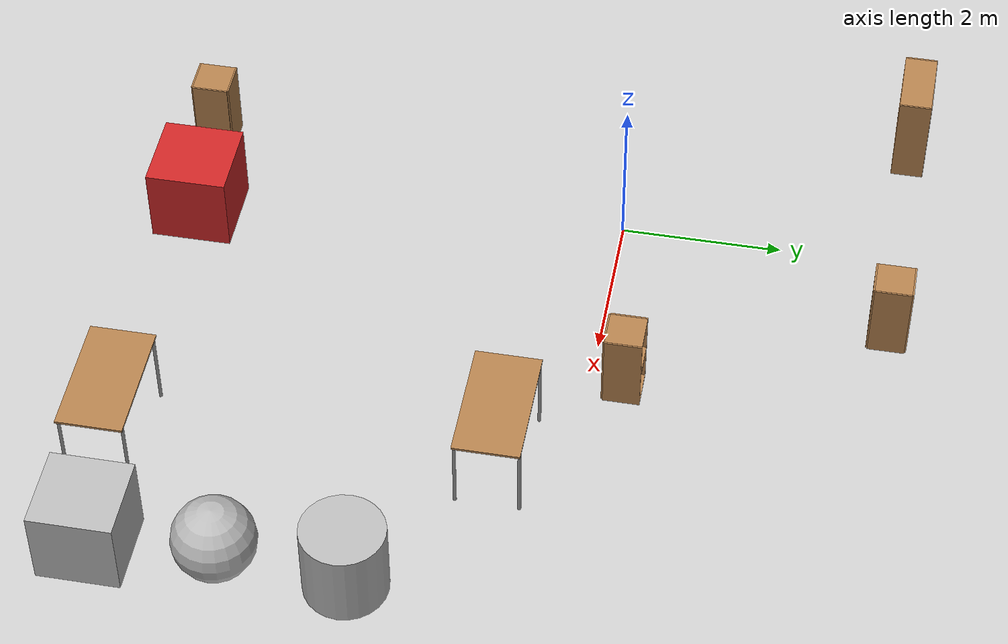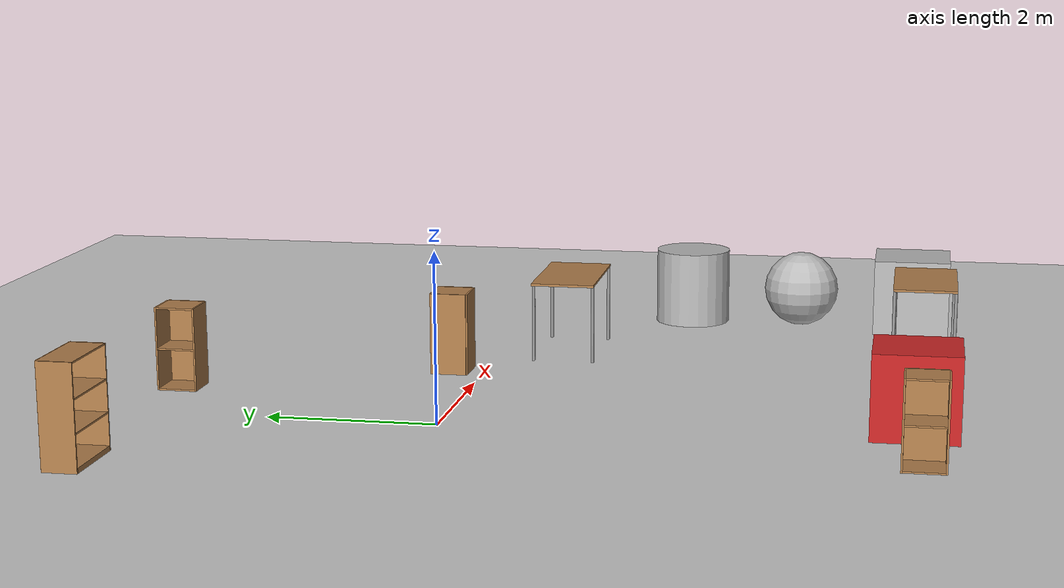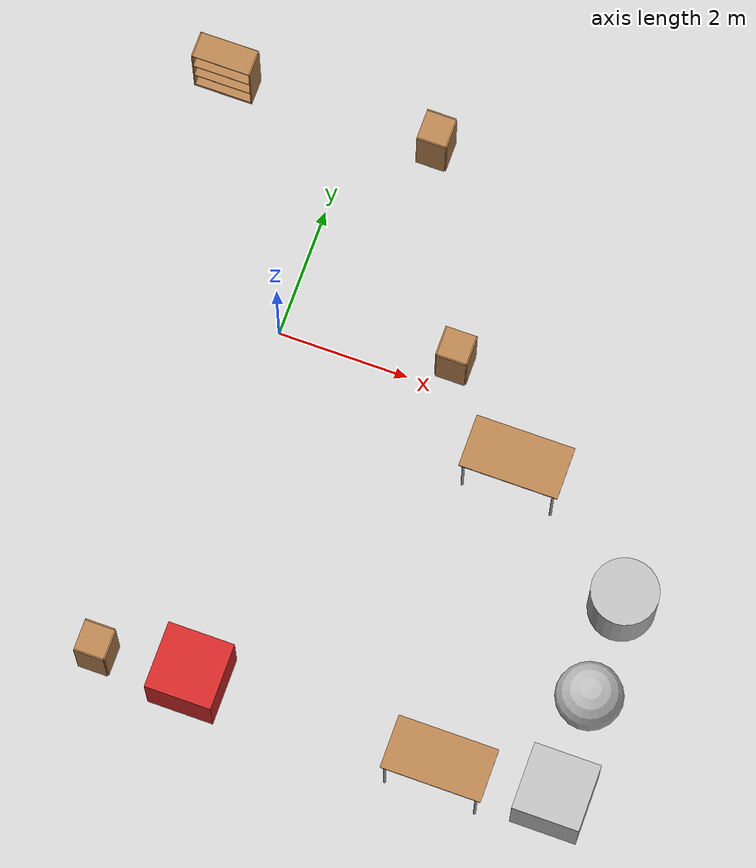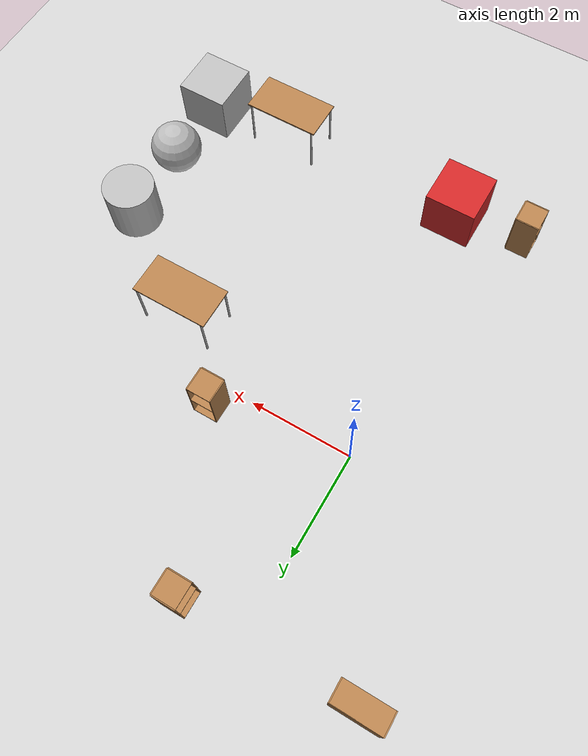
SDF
<sdf version="1.6">
 <world name="default">
  <model name="ground_plane">
   <static>1</static>
   <link name="link">
    <collision name="collision">
     <geometry><plane><normal>0 0 1</normal><size>100 100</size></plane></geometry>
     <surface>
      <contact><collide_bitmask>65535</collide_bitmask></contact>
      <friction><ode><mu>100</mu><mu2>50</mu2></ode></friction>
     </surface>
    </collision>
    <visual name="visual">
     <cast_shadows>0</cast_shadows>
     <geometry><plane><normal>0 0 1</normal><size>100 100</size></plane></geometry>
     <material>
      <script><uri>file://media/materials/scripts/gazebo.material</uri><name>Gazebo/Grey</name></script>
     </material>
    </visual>
   </link>
  </model>
  <model name="table">
   <static>1</static>
   <link name="link">
    <collision name="surface">
     <pose>0 0 1 0 -0 0</pose>
     <geometry><box><size>1.5 0.8 0.03</size></box></geometry>
     <surface><friction><ode><mu>0.6</mu><mu2>0.6</mu2></ode></friction></surface>
    </collision>
    <visual name="visual1">
     <pose>0 0 1 0 -0 0</pose>
     <geometry><box><size>1.5 0.8 0.03</size></box></geometry>
     <material>
      <script><uri>file://media/materials/scripts/gazebo.material</uri><name>Gazebo/Wood</name></script>
     </material>
    </visual>
    <collision name="front_left_leg">
     <pose>0.68 0.38 0.5 0 -0 0</pose>
     <geometry><cylinder><radius>0.02</radius><length>1</length></cylinder></geometry>
    </collision>
    <visual name="front_left_leg">
     <pose>0.68 0.38 0.5 0 -0 0</pose>
     <geometry><cylinder><radius>0.02</radius><length>1</length></cylinder></geometry>
     <material>
      <script><uri>file://media/materials/scripts/gazebo.material</uri><name>Gazebo/Grey</name></script>
     </material>
    </visual>
    <collision name="front_right_leg">
     <pose>0.68 -0.38 0.5 0 -0 0</pose>
     <geometry><cylinder><radius>0.02</radius><length>1</length></cylinder></geometry>
    </collision>
    <visual name="front_right_leg">
     <pose>0.68 -0.38 0.5 0 -0 0</pose>
     <geometry><cylinder><radius>0.02</radius><length>1</length></cylinder></geometry>
     <material>
      <script><uri>file://media/materials/scripts/gazebo.material</uri><name>Gazebo/Grey</name></script>
     </material>
    </visual>
    <collision name="back_right_leg">
     <pose>-0.68 -0.38 0.5 0 -0 0</pose>
     <geometry><cylinder><radius>0.02</radius><length>1</length></cylinder></geometry>
    </collision>
    <visual name="back_right_leg">
     <pose>-0.68 -0.38 0.5 0 -0 0</pose>
     <geometry><cylinder><radius>0.02</radius><length>1</length></cylinder></geometry>
     <material>
      <script><uri>file://media/materials/scripts/gazebo.material</uri><name>Gazebo/Grey</name></script>
     </material>
    </visual>
    <collision name="back_left_leg">
     <pose>-0.68 0.38 0.5 0 -0 0</pose>
     <geometry><cylinder><radius>0.02</radius><length>1</length></cylinder></geometry>
    </collision>
    <visual name="back_left_leg">
     <pose>-0.68 0.38 0.5 0 -0 0</pose>
     <geometry><cylinder><radius>0.02</radius><length>1</length></cylinder></geometry>
     <material>
      <script><uri>file://media/materials/scripts/gazebo.material</uri><name>Gazebo/Grey</name></script>
     </material>
    </visual>
   </link>
   <pose>3.97524 -0.880736 0 0 -0 0</pose>
  </model>
  <model name="bookshelf">
   <static>1</static>
   <link name="link">
    <inertial><mass>1</mass></inertial>
    <collision name="back">
     <pose>0 0.005 0.6 0 -0 0</pose>
     <geometry><box><size>0.9 0.01 1.2</size></box></geometry>
    </collision>
    <visual name="visual1">
     <pose>0 0.005 0.6 0 -0 0</pose>
     <geometry><box><size>0.9 0.01 1.2</size></box></geometry>
     <material>
      <script><uri>file://media/materials/scripts/gazebo.material</uri><name>Gazebo/Wood</name></script>
     </material>
    </visual>
    <collision name="left_side">
     <pose>0.45 -0.195 0.6 0 -0 0</pose>
     <geometry><box><size>0.02 0.4 1.2</size></box></geometry>
    </collision>
    <visual name="visual2">
     <pose>0.45 -0.195 0.6 0 -0 0</pose>
     <geometry><box><size>0.02 0.4 1.2</size></box></geometry>
     <material>
      <script><uri>file://media/materials/scripts/gazebo.material</uri><name>Gazebo/Wood</name></script>
     </material>
    </visual>
    <collision name="right_side">
     <pose>-0.45 -0.195 0.6 0 -0 0</pose>
     <geometry><box><size>0.02 0.4 1.2</size></box></geometry>
    </collision>
    <visual name="visual3">
     <pose>-0.45 -0.195 0.6 0 -0 0</pose>
     <geometry><box><size>0.02 0.4 1.2</size></box></geometry>
     <material>
      <script><uri>file://media/materials/scripts/gazebo.material</uri><name>Gazebo/Wood</name></script>
     </material>
    </visual>
    <collision name="bottom">
     <pose>0 -0.195 0.03 0 -0 0</pose>
     <geometry><box><size>0.88 0.4 0.06</size></box></geometry>
    </collision>
    <visual name="visual4">
     <pose>0 -0.195 0.03 0 -0 0</pose>
     <geometry><box><size>0.88 0.4 0.06</size></box></geometry>
     <material>
      <script><uri>file://media/materials/scripts/gazebo.material</uri><name>Gazebo/Wood</name></script>
     </material>
    </visual>
    <collision name="top">
     <pose>0 -0.195 1.19 0 -0 0</pose>
     <geometry><box><size>0.88 0.4 0.02</size></box></geometry>
    </collision>
    <visual name="visual5">
     <pose>0 -0.195 1.19 0 -0 0</pose>
     <geometry><box><size>0.88 0.4 0.02</size></box></geometry>
     <material>
      <script><uri>file://media/materials/scripts/gazebo.material</uri><name>Gazebo/Wood</name></script>
     </material>
    </visual>
    <collision name="low_shelf">
     <pose>0 -0.195 0.43 0 -0 0</pose>
     <geometry><box><size>0.88 0.4 0.02</size></box></geometry>
    </collision>
    <visual name="visual6">
     <pose>0 -0.195 0.43 0 -0 0</pose>
     <geometry><box><size>0.88 0.4 0.02</size></box></geometry>
     <material>
      <script><uri>file://media/materials/scripts/gazebo.material</uri><name>Gazebo/Wood</name></script>
     </material>
    </visual>
    <collision name="high_shelf">
     <pose>0 -0.195 0.8 0 -0 0</pose>
     <geometry><box><size>0.88 0.4 0.02</size></box></geometry>
    </collision>
    <visual name="visual7">
     <pose>0 -0.195 0.8 0 -0 0</pose>
     <geometry><box><size>0.88 0.4 0.02</size></box></geometry>
     <material>
      <script><uri>file://media/materials/scripts/gazebo.material</uri><name>Gazebo/Wood</name></script>
     </material>
    </visual>
   </link>
   <pose>-2.08453 3.64023 0 0 -0 0</pose>
  </model>
  <model name="table_0">
   <static>1</static>
   <link name="link">
    <collision name="surface">
     <pose>0 0 1 0 -0 0</pose>
     <geometry><box><size>1.5 0.8 0.03</size></box></geometry>
     <surface><friction><ode><mu>0.6</mu><mu2>0.6</mu2></ode></friction></surface>
    </collision>
    <visual name="visual1">
     <pose>0 0 1 0 -0 0</pose>
     <geometry><box><size>1.5 0.8 0.03</size></box></geometry>
     <material>
      <script><uri>file://media/materials/scripts/gazebo.material</uri><name>Gazebo/Wood</name></script>
     </material>
    </visual>
    <collision name="front_left_leg">
     <pose>0.68 0.38 0.5 0 -0 0</pose>
     <geometry><cylinder><radius>0.02</radius><length>1</length></cylinder></geometry>
    </collision>
    <visual name="front_left_leg">
     <pose>0.68 0.38 0.5 0 -0 0</pose>
     <geometry><cylinder><radius>0.02</radius><length>1</length></cylinder></geometry>
     <material>
      <script><uri>file://media/materials/scripts/gazebo.material</uri><name>Gazebo/Grey</name></script>
     </material>
    </visual>
    <collision name="front_right_leg">
     <pose>0.68 -0.38 0.5 0 -0 0</pose>
     <geometry><cylinder><radius>0.02</radius><length>1</length></cylinder></geometry>
    </collision>
    <visual name="front_right_leg">
     <pose>0.68 -0.38 0.5 0 -0 0</pose>
     <geometry><cylinder><radius>0.02</radius><length>1</length></cylinder></geometry>
     <material>
      <script><uri>file://media/materials/scripts/gazebo.material</uri><name>Gazebo/Grey</name></script>
     </material>
    </visual>
    <collision name="back_right_leg">
     <pose>-0.68 -0.38 0.5 0 -0 0</pose>
     <geometry><cylinder><radius>0.02</radius><length>1</length></cylinder></geometry>
    </collision>
    <visual name="back_right_leg">
     <pose>-0.68 -0.38 0.5 0 -0 0</pose>
     <geometry><cylinder><radius>0.02</radius><length>1</length></cylinder></geometry>
     <material>
      <script><uri>file://media/materials/scripts/gazebo.material</uri><name>Gazebo/Grey</name></script>
     </material>
    </visual>
    <collision name="back_left_leg">
     <pose>-0.68 0.38 0.5 0 -0 0</pose>
     <geometry><cylinder><radius>0.02</radius><length>1</length></cylinder></geometry>
    </collision>
    <visual name="back_left_leg">
     <pose>-0.68 0.38 0.5 0 -0 0</pose>
     <geometry><cylinder><radius>0.02</radius><length>1</length></cylinder></geometry>
     <material>
      <script><uri>file://media/materials/scripts/gazebo.material</uri><name>Gazebo/Grey</name></script>
     </material>
    </visual>
   </link>
   <pose>4.39643 -5.41437 0 0 -0 0</pose>
  </model>
  <model name="cabinet">
   <static>1</static>
   <link name="cabinet_bottom_plate">
    <inertial>
     <pose>0 0 -1 0 -0 0</pose>
     <inertia><ixx>2.05</ixx><ixy>0</ixy><ixz>0</ixz><iyy>2.05</iyy><iyz>0</iyz><izz>2.05</izz></inertia>
     <mass>25</mass>
    </inertial>
    <collision name="cabinet_bottom_plate_geom">
     <pose>0 0 0.01 0 -0 0</pose>
     <geometry><box><size>0.45 0.45 0.02</size></box></geometry>
    </collision>
    <visual name="cabinet_bottom_plate_geom_visual">
     <pose>0 0 0.01 0 -0 0</pose>
     <geometry><box><size>0.45 0.45 0.02</size></box></geometry>
     <material>
      <script><uri>file://media/materials/scripts/gazebo.material</uri><name>Gazebo/Wood</name></script>
     </material>
    </visual>
    <collision name="cabinet_bottom_plate_geom_cabinet_back_plate">
     <pose>0.235 0 0.51 0 -0 0</pose>
     <geometry><box><size>0.02 0.45 1.02</size></box></geometry>
    </collision>
    <visual name="cabinet_bottom_plate_geom_cabinet_back_plate_visual">
     <pose>0.235 0 0.51 0 -0 0</pose>
     <geometry><box><size>0.02 0.45 1.02</size></box></geometry>
     <material>
      <script><uri>file://media/materials/scripts/gazebo.material</uri><name>Gazebo/Wood</name></script>
     </material>
    </visual>
    <collision name="cabinet_bottom_plate_geom_cabinet_left_plate">
     <pose>0 0.235 0.51 0 -0 0</pose>
     <geometry><box><size>0.45 0.02 1.02</size></box></geometry>
    </collision>
    <visual name="cabinet_bottom_plate_geom_cabinet_left_plate_visual">
     <pose>0 0.235 0.51 0 -0 0</pose>
     <geometry><box><size>0.45 0.02 1.02</size></box></geometry>
     <material>
      <script><uri>file://media/materials/scripts/gazebo.material</uri><name>Gazebo/Wood</name></script>
     </material>
    </visual>
    <collision name="cabinet_bottom_plate_geom_cabinet_middle_plate">
     <pose>0 0 0.51 0 -0 0</pose>
     <geometry><box><size>0.45 0.45 0.02</size></box></geometry>
    </collision>
    <visual name="cabinet_bottom_plate_geom_cabinet_middle_plate_visual">
     <pose>0 0 0.51 0 -0 0</pose>
     <geometry><box><size>0.45 0.45 0.02</size></box></geometry>
     <material>
      <script><uri>file://media/materials/scripts/gazebo.material</uri><name>Gazebo/Wood</name></script>
     </material>
    </visual>
    <collision name="cabinet_bottom_plate_geom_cabinet_right_plate">
     <pose>0 -0.235 0.51 0 -0 0</pose>
     <geometry><box><size>0.45 0.02 1.02</size></box></geometry>
    </collision>
    <visual name="cabinet_bottom_plate_geom_cabinet_right_plate_visual">
     <pose>0 -0.235 0.51 0 -0 0</pose>
     <geometry><box><size>0.45 0.02 1.02</size></box></geometry>
     <material>
      <script><uri>file://media/materials/scripts/gazebo.material</uri><name>Gazebo/Wood</name></script>
     </material>
    </visual>
    <collision name="cabinet_bottom_plate_geom_cabinet_top_plate">
     <pose>0 0 1.01 0 -0 0</pose>
     <geometry><box><size>0.45 0.45 0.02</size></box></geometry>
    </collision>
    <visual name="cabinet_bottom_plate_geom_cabinet_top_plate_visual">
     <pose>0 0 1.01 0 -0 0</pose>
     <geometry><box><size>0.45 0.45 0.02</size></box></geometry>
     <material>
      <script><uri>file://media/materials/scripts/gazebo.material</uri><name>Gazebo/Wood</name></script>
     </material>
    </visual>
   </link>
   <pose>-0.788023 -5.44719 0 0 -0 0</pose>
  </model>
  <model name="cabinet_clone">
   <static>1</static>
   <link name="cabinet_bottom_plate">
    <inertial>
     <pose>0 0 -1 0 -0 0</pose>
     <inertia><ixx>2.05</ixx><ixy>0</ixy><ixz>0</ixz><iyy>2.05</iyy><iyz>0</iyz><izz>2.05</izz></inertia>
     <mass>25</mass>
    </inertial>
    <collision name="cabinet_bottom_plate_geom">
     <pose>0 0 0.01 0 -0 0</pose>
     <geometry><box><size>0.45 0.45 0.02</size></box></geometry>
    </collision>
    <visual name="cabinet_bottom_plate_geom_visual">
     <pose>0 0 0.01 0 -0 0</pose>
     <geometry><box><size>0.45 0.45 0.02</size></box></geometry>
     <material>
      <script><uri>file://media/materials/scripts/gazebo.material</uri><name>Gazebo/Wood</name></script>
     </material>
    </visual>
    <collision name="cabinet_bottom_plate_geom_cabinet_back_plate">
     <pose>0.235 0 0.51 0 -0 0</pose>
     <geometry><box><size>0.02 0.45 1.02</size></box></geometry>
    </collision>
    <visual name="cabinet_bottom_plate_geom_cabinet_back_plate_visual">
     <pose>0.235 0 0.51 0 -0 0</pose>
     <geometry><box><size>0.02 0.45 1.02</size></box></geometry>
     <material>
      <script><uri>file://media/materials/scripts/gazebo.material</uri><name>Gazebo/Wood</name></script>
     </material>
    </visual>
    <collision name="cabinet_bottom_plate_geom_cabinet_left_plate">
     <pose>0 0.235 0.51 0 -0 0</pose>
     <geometry><box><size>0.45 0.02 1.02</size></box></geometry>
    </collision>
    <visual name="cabinet_bottom_plate_geom_cabinet_left_plate_visual">
     <pose>0 0.235 0.51 0 -0 0</pose>
     <geometry><box><size>0.45 0.02 1.02</size></box></geometry>
     <material>
      <script><uri>file://media/materials/scripts/gazebo.material</uri><name>Gazebo/Wood</name></script>
     </material>
    </visual>
    <collision name="cabinet_bottom_plate_geom_cabinet_middle_plate">
     <pose>0 0 0.51 0 -0 0</pose>
     <geometry><box><size>0.45 0.45 0.02</size></box></geometry>
    </collision>
    <visual name="cabinet_bottom_plate_geom_cabinet_middle_plate_visual">
     <pose>0 0 0.51 0 -0 0</pose>
     <geometry><box><size>0.45 0.45 0.02</size></box></geometry>
     <material>
      <script><uri>file://media/materials/scripts/gazebo.material</uri><name>Gazebo/Wood</name></script>
     </material>
    </visual>
    <collision name="cabinet_bottom_plate_geom_cabinet_right_plate">
     <pose>0 -0.235 0.51 0 -0 0</pose>
     <geometry><box><size>0.45 0.02 1.02</size></box></geometry>
    </collision>
    <visual name="cabinet_bottom_plate_geom_cabinet_right_plate_visual">
     <pose>0 -0.235 0.51 0 -0 0</pose>
     <geometry><box><size>0.45 0.02 1.02</size></box></geometry>
     <material>
      <script><uri>file://media/materials/scripts/gazebo.material</uri><name>Gazebo/Wood</name></script>
     </material>
    </visual>
    <collision name="cabinet_bottom_plate_geom_cabinet_top_plate">
     <pose>0 0 1.01 0 -0 0</pose>
     <geometry><box><size>0.45 0.45 0.02</size></box></geometry>
    </collision>
    <visual name="cabinet_bottom_plate_geom_cabinet_top_plate_visual">
     <pose>0 0 1.01 0 -0 0</pose>
     <geometry><box><size>0.45 0.45 0.02</size></box></geometry>
     <material>
      <script><uri>file://media/materials/scripts/gazebo.material</uri><name>Gazebo/Wood</name></script>
     </material>
    </visual>
   </link>
   <pose>2.60244 0.408301 0 0 0 -1.57037</pose>
  </model>
  <model name="cabinet_clone_1">
   <static>1</static>
   <link name="cabinet_bottom_plate">
    <inertial>
     <pose>0 0 -1 0 -0 0</pose>
     <inertia><ixx>2.05</ixx><ixy>0</ixy><ixz>0</ixz><iyy>2.05</iyy><iyz>0</iyz><izz>2.05</izz></inertia>
     <mass>25</mass>
    </inertial>
    <collision name="cabinet_bottom_plate_geom">
     <pose>0 0 0.01 0 -0 0</pose>
     <geometry><box><size>0.45 0.45 0.02</size></box></geometry>
    </collision>
    <visual name="cabinet_bottom_plate_geom_visual">
     <pose>0 0 0.01 0 -0 0</pose>
     <geometry><box><size>0.45 0.45 0.02</size></box></geometry>
     <material>
      <script><uri>file://media/materials/scripts/gazebo.material</uri><name>Gazebo/Wood</name></script>
     </material>
    </visual>
    <collision name="cabinet_bottom_plate_geom_cabinet_back_plate">
     <pose>0.235 0 0.51 0 -0 0</pose>
     <geometry><box><size>0.02 0.45 1.02</size></box></geometry>
    </collision>
    <visual name="cabinet_bottom_plate_geom_cabinet_back_plate_visual">
     <pose>0.235 0 0.51 0 -0 0</pose>
     <geometry><box><size>0.02 0.45 1.02</size></box></geometry>
     <material>
      <script><uri>file://media/materials/scripts/gazebo.material</uri><name>Gazebo/Wood</name></script>
     </material>
    </visual>
    <collision name="cabinet_bottom_plate_geom_cabinet_left_plate">
     <pose>0 0.235 0.51 0 -0 0</pose>
     <geometry><box><size>0.45 0.02 1.02</size></box></geometry>
    </collision>
    <visual name="cabinet_bottom_plate_geom_cabinet_left_plate_visual">
     <pose>0 0.235 0.51 0 -0 0</pose>
     <geometry><box><size>0.45 0.02 1.02</size></box></geometry>
     <material>
      <script><uri>file://media/materials/scripts/gazebo.material</uri><name>Gazebo/Wood</name></script>
     </material>
    </visual>
    <collision name="cabinet_bottom_plate_geom_cabinet_middle_plate">
     <pose>0 0 0.51 0 -0 0</pose>
     <geometry><box><size>0.45 0.45 0.02</size></box></geometry>
    </collision>
    <visual name="cabinet_bottom_plate_geom_cabinet_middle_plate_visual">
     <pose>0 0 0.51 0 -0 0</pose>
     <geometry><box><size>0.45 0.45 0.02</size></box></geometry>
     <material>
      <script><uri>file://media/materials/scripts/gazebo.material</uri><name>Gazebo/Wood</name></script>
     </material>
    </visual>
    <collision name="cabinet_bottom_plate_geom_cabinet_right_plate">
     <pose>0 -0.235 0.51 0 -0 0</pose>
     <geometry><box><size>0.45 0.02 1.02</size></box></geometry>
    </collision>
    <visual name="cabinet_bottom_plate_geom_cabinet_right_plate_visual">
     <pose>0 -0.235 0.51 0 -0 0</pose>
     <geometry><box><size>0.45 0.02 1.02</size></box></geometry>
     <material>
      <script><uri>file://media/materials/scripts/gazebo.material</uri><name>Gazebo/Wood</name></script>
     </material>
    </visual>
    <collision name="cabinet_bottom_plate_geom_cabinet_top_plate">
     <pose>0 0 1.01 0 -0 0</pose>
     <geometry><box><size>0.45 0.45 0.02</size></box></geometry>
    </collision>
    <visual name="cabinet_bottom_plate_geom_cabinet_top_plate_visual">
     <pose>0 0 1.01 0 -0 0</pose>
     <geometry><box><size>0.45 0.45 0.02</size></box></geometry>
     <material>
      <script><uri>file://media/materials/scripts/gazebo.material</uri><name>Gazebo/Wood</name></script>
     </material>
    </visual>
   </link>
   <pose>1.21702 3.45252 0 0 -0 0</pose>
  </model>
  <model name="textured_shapes">
   <pose>6.07964 -3.73784 0.5 0 -0 0</pose>
   <link name="box">
    <pose>0 -1.5 0 0 -0 0</pose>
    <collision name="collision"><geometry><box><size>1 1 1</size></box></geometry></collision>
    <visual name="visual">
     <geometry><box><size>1 1 1</size></box></geometry>
     <material>
      <script>
       <uri>model://textured_shapes/materials/scripts</uri>
       <uri>model://textured_shapes/materials/textures</uri>
       <name>TexturedShape/Squares</name>
      </script>
     </material>
    </visual>
    <inertial>
     <inertia><ixx>1</ixx><ixy>0</ixy><ixz>0</ixz><iyy>1</iyy><iyz>0</iyz><izz>1</izz></inertia>
     <mass>1</mass>
    </inertial>
   </link>
   <link name="sphere">
    <collision name="collision"><geometry><sphere><radius>0.5</radius></sphere></geometry></collision>
    <visual name="visual">
     <geometry><sphere><radius>0.5</radius></sphere></geometry>
     <material>
      <script>
       <uri>model://textured_shapes/materials/scripts</uri>
       <uri>model://textured_shapes/materials/textures</uri>
       <name>TexturedShape/Squares</name>
      </script>
     </material>
    </visual>
    <inertial>
     <inertia><ixx>1</ixx><ixy>0</ixy><ixz>0</ixz><iyy>1</iyy><iyz>0</iyz><izz>1</izz></inertia>
     <mass>1</mass>
    </inertial>
   </link>
   <link name="cylinder">
    <pose>0 1.5 0 0 -0 0</pose>
    <collision name="collision">
     <geometry><cylinder><radius>0.5</radius><length>1</length></cylinder></geometry>
    </collision>
    <visual name="visual">
     <geometry><cylinder><radius>0.5</radius><length>1</length></cylinder></geometry>
     <material>
      <script>
       <uri>model://textured_shapes/materials/scripts</uri>
       <uri>model://textured_shapes/materials/textures</uri>
       <name>TexturedShape/Squares</name>
      </script>
     </material>
    </visual>
    <inertial>
     <inertia><ixx>1</ixx><ixy>0</ixy><ixz>0</ixz><iyy>1</iyy><iyz>0</iyz><izz>1</izz></inertia>
     <mass>1</mass>
    </inertial>
   </link>
  </model>
  <model name="red_unit_box_clone">
   <link name="link">
    <inertial>
     <mass>1</mass>
     <inertia>
      <ixx>0.166667</ixx>
      <ixy>0</ixy>
      <ixz>0</ixz>
      <iyy>0.166667</iyy>
      <iyz>0</iyz>
      <izz>0.166667</izz>
     </inertia>
    </inertial>
    <visual name="visual">
     <geometry><box><size>1 1 1</size></box></geometry>
     <material>
      <script><name>Gazebo/Red</name><uri>file://media/materials/scripts/gazebo.material</uri></script>
      <shader type="pixel"><normal_map>__default__</normal_map></shader>
      <ambient>1 0.3 0.3 1</ambient>
      <diffuse>0.7 0.7 0.7 1</diffuse>
      <specular>0.01 0.01 0.01 1</specular>
      <emissive>0 0 0 1</emissive>
     </material>
    </visual>
    <collision name="collision">
     <geometry><box><size>1 1 1</size></box></geometry>
     <surface>
      <friction>
       <ode><mu>1</mu><mu2>1</mu2><fdir1>0 0 0</fdir1><slip1>0</slip1><slip2>0</slip2></ode>
       <torsional>
        <coefficient>1</coefficient>
        <patch_radius>0</patch_radius>
        <surface_radius>0</surface_radius>
        <use_patch_radius>1</use_patch_radius>
        <ode><slip>0</slip></ode>
       </torsional>
      </friction>
      <bounce><restitution_coefficient>0</restitution_coefficient><threshold>1e+06</threshold></bounce>
      <contact>
       <collide_without_contact>0</collide_without_contact>
       <collide_without_contact_bitmask>1</collide_without_contact_bitmask>
       <collide_bitmask>1</collide_bitmask>
       <ode>
        <soft_cfm>0</soft_cfm>
        <soft_erp>0.2</soft_erp>
        <kp>1e+13</kp>
        <kd>1</kd>
        <max_vel>0.01</max_vel>
        <min_depth>0</min_depth>
       </ode>
       <bullet>
        <split_impulse>1</split_impulse>
        <split_impulse_penetration_threshold>-0.01</split_impulse_penetration_threshold>
        <soft_cfm>0</soft_cfm>
        <soft_erp>0.2</soft_erp>
        <kp>1e+13</kp>
        <kd>1</kd>
       </bullet>
      </contact>
     </surface>
    </collision>
   </link>
   <static>0</static>
   <pose>0.612999 -5.3412 0.499995 0 -1e-05 0.000833</pose>
  </model>
 </world>
</sdf>
